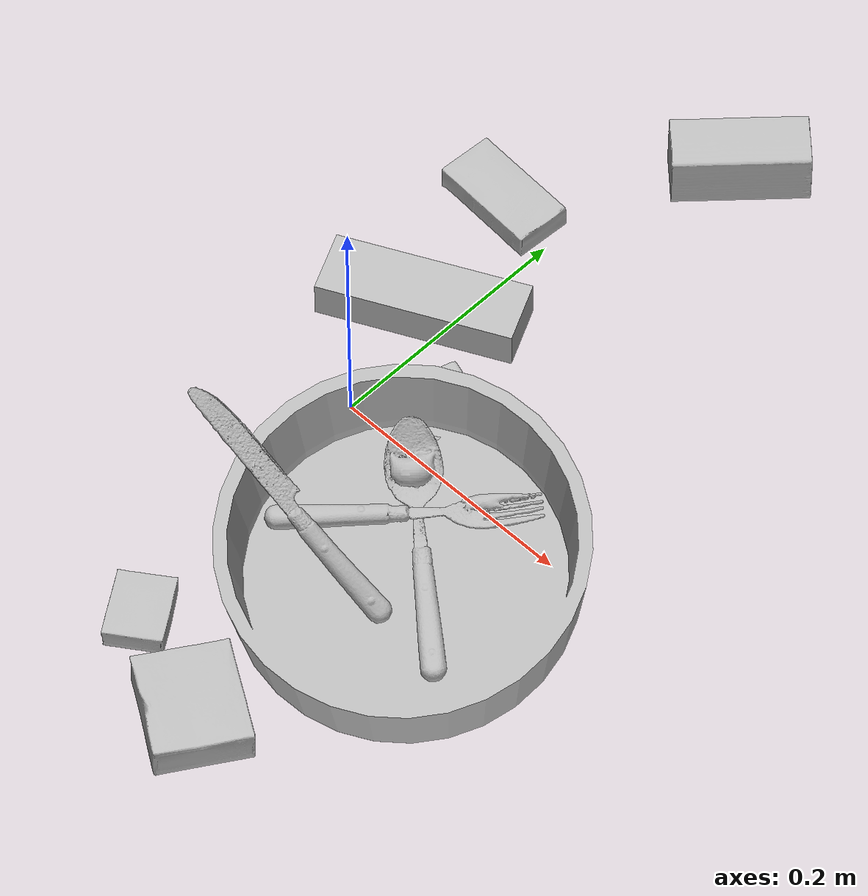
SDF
<sdf version="1.4">
  <world name="default">
    <light name="light1" type="point">
      <pose>0 0 1 0 0 0</pose>
      <diffuse>3 3 3 1</diffuse>
      <specular>3 3 3 1</specular>
    </light>
    <light name="light2" type="point">
      <pose>0 0.5 2 0 0 0</pose>
      <diffuse>1 1 1 1</diffuse>
      <specular>1 1 1 1</specular>
    </light>
    <light name="light3" type="point">
      <pose>0 0.5 2 0 0 0</pose>
      <diffuse>3 3 3 1</diffuse>
      <specular>3 3 3 1</specular>
    </light>
    <scene>
      <ambient>0.7 0.7 0.7</ambient>
    </scene>
    <model name="box11">
      <link name="link_box11">
        <collision name="default">
          <geometry>
            <mesh>
              <uri>model://jenga/collision_meshes/collision.obj</uri>
              <scale>1.0 1.0 1.0</scale>
            </mesh>
          </geometry>
          <surface>
            <friction>
              <ode>
                <mu>0.5</mu>
                <mu2>0.5</mu2>
              </ode>
            </friction>
          <contact>
        <ode>
            <max_vel>0</max_vel>
            <min_depth>0.0001</min_depth>
            <kp>1e8</kp>
        </ode>
    </contact></surface>
        </collision>
        <visual name="default">
          <geometry>
            <mesh>
              <uri>model://jenga/visual_meshes/visual.dae</uri>
              <scale>1.0 1.0 1.0</scale>
            </mesh>
          </geometry>
        </visual>
        <inertial>
          <mass>0.22063912451267242</mass>
          <pose>-2.502855807051674e-07 -0.00010250011109746993 -4.0923405322246253e-05 0.0 -7.34215461761844e-07 0.0</pose>
          <inertia>
            <ixx>6.1056206e-05</ixx>
            <iyy>0.00041371517</iyy>
            <izz>0.00044167612</izz>
            <ixy>0</ixy>
            <ixz>0</ixz>
            <iyz>0</iyz>
          </inertia>
        </inertial>
      </link>
      <pose>-0.022917410358786583 0.0978851392865181 0.014999997802078724 1.2567899351409981e-08 -2.013290709102537e-09 0.4564845364566908</pose>
    </model>
    <model name="box12">
      <link name="link_box12">
        <collision name="default">
          <geometry>
            <mesh>
              <uri>model://sugar_box/collision_meshes/collision.obj</uri>
              <scale>0.5 0.5 0.5</scale>
            </mesh>
          </geometry>
          <surface>
            <friction>
              <ode>
                <mu>0.5</mu>
                <mu2>0.5</mu2>
              </ode>
            </friction>
          <contact>
        <ode>
            <max_vel>0</max_vel>
            <min_depth>0.0001</min_depth>
            <kp>1e8</kp>
        </ode>
    </contact></surface>
        </collision>
        <visual name="default">
          <geometry>
            <mesh>
              <uri>model://sugar_box/visual_meshes/visual.dae</uri>
              <scale>0.5 0.5 0.5</scale>
            </mesh>
          </geometry>
        </visual>
        <inertial>
          <mass>0.053318966180086136</mass>
          <pose>0.0005171863595023751 1.924554817378521e-05 -0.00018182402709499002 -0.00040462627129080113 0.001050663522124822 0.0026153787889376494</pose>
          <inertia>
            <ixx>1.1106302e-05</ixx>
            <iyy>3.5897858e-05</iyy>
            <izz>4.2974014e-05</izz>
            <ixy>0</ixy>
            <ixz>0</ixz>
            <iyz>0</iyz>
          </inertia>
        </inertial>
      </link>
      <pose>-0.04904530569911003 0.20780473947525024 0.011399304494261742 0.0007745693298364671 -0.023433038467680363 3.076790555917664</pose>
    </model>
    <model name="box13">
      <link name="link_box13">
        <collision name="default">
          <geometry>
            <mesh>
              <uri>model://gelatin_box/collision_meshes/collision.obj</uri>
              <scale>1.0 1.0 1.0</scale>
            </mesh>
          </geometry>
          <surface>
            <friction>
              <ode>
                <mu>0.5</mu>
                <mu2>0.5</mu2>
              </ode>
            </friction>
          <contact>
        <ode>
            <max_vel>0</max_vel>
            <min_depth>0.0001</min_depth>
            <kp>1e8</kp>
        </ode>
    </contact></surface>
        </collision>
        <visual name="default">
          <geometry>
            <mesh>
              <uri>model://gelatin_box/visual_meshes/visual.dae</uri>
              <scale>1.0 1.0 1.0</scale>
            </mesh>
          </geometry>
        </visual>
        <inertial>
          <mass>0.19111748039722443</mass>
          <pose>0.0004319618456065655 0.00011156871914863586 -0.00036403207923285663 -0.0010503719765995955 -0.004755818690324038 0.01644055947160125</pose>
          <inertia>
            <ixx>0.00013491335</ixx>
            <iyy>9.63679e-05</iyy>
            <izz>0.00020536821</izz>
            <ixy>0</ixy>
            <ixz>0</ixz>
            <iyz>0</iyz>
          </inertia>
        </inertial>
      </link>
      <pose>0.11192643642425537 -0.26801878213882446 0.01516831386834383 0.0055974605218641815 -0.007304554200520274 -2.153925517387216</pose>
    </model>
    <model name="box21">
      <link name="link_box21">
        <collision name="default">
          <geometry>
            <mesh>
              <uri>model://pudding_box/collision_meshes/collision.obj</uri>
              <scale>0.5 0.5 0.5</scale>
            </mesh>
          </geometry>
          <surface>
            <friction>
              <ode>
                <mu>0.5</mu>
                <mu2>0.5</mu2>
              </ode>
            </friction>
          <contact>
        <ode>
            <max_vel>0</max_vel>
            <min_depth>0.0001</min_depth>
            <kp>1e8</kp>
        </ode>
    </contact></surface>
        </collision>
        <visual name="default">
          <geometry>
            <mesh>
              <uri>model://pudding_box/visual_meshes/visual.dae</uri>
              <scale>0.5 0.5 0.5</scale>
            </mesh>
          </geometry>
        </visual>
        <inertial>
          <mass>0.037507444620132446</mass>
          <pose>0.00024474109522998333 0.0004033942532259971 -0.0002594413817860186 0.00521310221980129 -0.006603800139852783 0.020079832606434308</pose>
          <inertia>
            <ixx>1.0600058e-05</ixx>
            <iyy>7.131795e-06</iyy>
            <izz>1.5653754e-05</izz>
            <ixy>0</ixy>
            <ixz>0</ixz>
            <iyz>0</iyz>
          </inertia>
        </inertial>
      </link>
      <pose>0.02597580850124359 -0.23556338250637054 0.009862905368208885 0.0223484604892268 -0.011391804678473167 0.5820448368193566</pose>
    </model>
    <model name="box22">
      <link name="link_box22">
        <collision name="default">
          <geometry>
            <mesh>
              <uri>model://rubiks_cube/collision_meshes/collision.obj</uri>
              <scale>1.0 1.0 1.0</scale>
            </mesh>
          </geometry>
          <surface>
            <friction>
              <ode>
                <mu>0.5</mu>
                <mu2>0.5</mu2>
              </ode>
            </friction>
          <contact>
        <ode>
            <max_vel>0</max_vel>
            <min_depth>0.0001</min_depth>
            <kp>1e8</kp>
        </ode>
    </contact></surface>
        </collision>
        <visual name="default">
          <geometry>
            <mesh>
              <uri>model://rubiks_cube/visual_meshes/visual.dae</uri>
              <scale>1.0 1.0 1.0</scale>
            </mesh>
          </geometry>
        </visual>
        <inertial>
          <mass>0.19412381947040558</mass>
          <pose>2.6721041649580002e-05 5.2569666877388954e-05 -7.264316082000732e-06 -0.05467327462967597 -0.09814157667114887 -0.034454893398498845</pose>
          <inertia>
            <ixx>0.000107266445</ixx>
            <iyy>0.0001067662</iyy>
            <izz>0.00010815532</izz>
            <ixy>0</ixy>
            <ixz>0</ixz>
            <iyz>0</iyz>
          </inertia>
        </inertial>
      </link>
      <pose>0.07218103110790253 0.016552887856960297 0.028673825785517693 -0.00018279828295426597 -0.0003047373891377255 1.2506369926756236</pose>
    </model>
    <model name="box23">
      <link name="link_box23">
        <collision name="default">
          <geometry>
            <mesh>
              <uri>model://wood_block/collision_meshes/collision.obj</uri>
              <scale>0.5 0.5 0.5</scale>
            </mesh>
          </geometry>
          <surface>
            <friction>
              <ode>
                <mu>0.5</mu>
                <mu2>0.5</mu2>
              </ode>
            </friction>
          <contact>
        <ode>
            <max_vel>0</max_vel>
            <min_depth>0.0001</min_depth>
            <kp>1e8</kp>
        </ode>
    </contact></surface>
        </collision>
        <visual name="default">
          <geometry>
            <mesh>
              <uri>model://wood_block/visual_meshes/visual.dae</uri>
              <scale>0.5 0.5 0.5</scale>
            </mesh>
          </geometry>
        </visual>
        <inertial>
          <mass>0.12021861970424652</mass>
          <pose>-2.9066577553749084e-06 -0.000285404734313488 0.00013204291462898254 -0.05220783851692058 -0.005192695246339916 -0.006861377900732038</pose>
          <inertia>
            <ixx>4.0217674e-05</ixx>
            <iyy>0.00012704768</iyy>
            <izz>0.00012657243</izz>
            <ixy>0</ixy>
            <ixz>0</ixz>
            <iyz>0</iyz>
          </inertia>
        </inertial>
      </link>
      <pose>0.05615974962711334 0.34766340255737305 0.022629257291555405 -0.005208457524173023 0.0057187371282998905 0.8128922820817509</pose>
    </model>
    <model name="plate1">
      <link name="link_plate1">
        <collision name="default">
          <geometry>
            <mesh>
              <uri>model://pan_tefal/collision_meshes/collision.obj</uri>
              <scale>1.0 1.0 1.0</scale>
            </mesh>
          </geometry>
          <surface>
            <friction>
              <ode>
                <mu>0.5</mu>
                <mu2>0.5</mu2>
              </ode>
            </friction>
          <contact>
        <ode>
            <max_vel>0</max_vel>
            <min_depth>0.0001</min_depth>
            <kp>1e8</kp>
        </ode>
    </contact></surface>
        </collision>
        <visual name="default">
          <geometry>
            <mesh>
              <uri>model://pan_tefal/visual_meshes/visual.dae</uri>
              <scale>1.0 1.0 1.0</scale>
            </mesh>
          </geometry>
        </visual>
        <inertial>
          <mass>1.1174349784851074</mass>
          <pose>-0.0001800186582840979 3.278696021880023e-05 -0.00851493701338768 0.0008190242272949328 -0.00033013996347192336 -0.33186114310704434</pose>
          <inertia>
            <ixx>0.0077136005</ixx>
            <iyy>0.0077633304</iyy>
            <izz>0.014199255</izz>
            <ixy>0</ixy>
            <ixz>0</ixz>
            <iyz>0</iyz>
          </inertia>
        </inertial>
      </link>
      <pose>0.1532287895679474 -0.09970023483037949 0.06252919137477875 0.06647586326424149 -0.23161481943825782 1.9509260170438751</pose>
    </model>
    <model name="silverware1">
      <link name="link_silverware1">
        <collision name="default">
          <geometry>
            <mesh>
              <uri>model://spoon/collision_meshes/collision.obj</uri>
              <scale>1.0 1.0 1.0</scale>
            </mesh>
          </geometry>
          <surface>
            <friction>
              <ode>
                <mu>0.5</mu>
                <mu2>0.5</mu2>
              </ode>
            </friction>
          <contact>
        <ode>
            <max_vel>0</max_vel>
            <min_depth>0.0001</min_depth>
            <kp>1e8</kp>
        </ode>
    </contact></surface>
        </collision>
        <visual name="default">
          <geometry>
            <mesh>
              <uri>model://spoon/visual_meshes/visual.dae</uri>
              <scale>1.0 1.0 1.0</scale>
            </mesh>
          </geometry>
        </visual>
        <inertial>
          <mass>0.03790392354130745</mass>
          <pose>-0.005526311695575714 -0.0016034170985221863 -0.0007271655485965312 0.03521845899657386 -0.039065840459698326 0.006150612465639116</pose>
          <inertia>
            <ixx>2.1082776e-06</ixx>
            <iyy>0.00014422317</iyy>
            <izz>0.00014526285</izz>
            <ixy>0</ixy>
            <ixz>0</ixz>
            <iyz>0</iyz>
          </inertia>
        </inertial>
      </link>
      <pose>0.1462227702140808 -0.07825111597776413 0.04514320567250252 -0.04557094682741249 -0.20817134048016514 2.440148340861464</pose>
    </model>
    <model name="silverware2">
      <link name="link_silverware2">
        <collision name="default">
          <geometry>
            <mesh>
              <uri>model://fork/collision_meshes/collision.obj</uri>
              <scale>1.0 1.0 1.0</scale>
            </mesh>
          </geometry>
          <surface>
            <friction>
              <ode>
                <mu>0.5</mu>
                <mu2>0.5</mu2>
              </ode>
            </friction>
          <contact>
        <ode>
            <max_vel>0</max_vel>
            <min_depth>0.0001</min_depth>
            <kp>1e8</kp>
        </ode>
    </contact></surface>
        </collision>
        <visual name="default">
          <geometry>
            <mesh>
              <uri>model://fork/visual_meshes/visual.dae</uri>
              <scale>1.0 1.0 1.0</scale>
            </mesh>
          </geometry>
        </visual>
        <inertial>
          <mass>0.029004188254475594</mass>
          <pose>-0.02957005612552166 0.0004658824182115495 0.00032188621116802096 -0.013551880215526314 -0.010977843078655252 0.014453906566097012</pose>
          <inertia>
            <ixx>1.0167608e-06</ixx>
            <iyy>7.572158e-05</iyy>
            <izz>7.617634e-05</izz>
            <ixy>0</ixy>
            <ixz>0</ixz>
            <iyz>0</iyz>
          </inertia>
        </inertial>
      </link>
      <pose>0.11929482221603394 -0.06538870185613632 0.04938206821680069 0.07314790737550725 -0.013627377730741507 0.7930348707735533</pose>
    </model>
    <model name="silverware3">
      <link name="link_silverware3">
        <collision name="default">
          <geometry>
            <mesh>
              <uri>model://knife/collision_meshes/collision.obj</uri>
              <scale>1.0 1.0 1.0</scale>
            </mesh>
          </geometry>
          <surface>
            <friction>
              <ode>
                <mu>0.5</mu>
                <mu2>0.5</mu2>
              </ode>
            </friction>
          <contact>
        <ode>
            <max_vel>0</max_vel>
            <min_depth>0.0001</min_depth>
            <kp>1e8</kp>
        </ode>
    </contact></surface>
        </collision>
        <visual name="default">
          <geometry>
            <mesh>
              <uri>model://knife/visual_meshes/visual.dae</uri>
              <scale>1.0 1.0 1.0</scale>
            </mesh>
          </geometry>
        </visual>
        <inertial>
          <mass>0.015800314024090767</mass>
          <pose>-0.023785250261425972 0.0015275126788765192 5.0620288675418124e-05 0.07305498599936577 0.01724841842216061 -0.0074098211805850795</pose>
          <inertia>
            <ixx>4.48477e-07</ixx>
            <iyy>6.0702252e-05</iyy>
            <izz>6.0846694e-05</izz>
            <ixy>0</ixy>
            <ixz>0</ixz>
            <iyz>0</iyz>
          </inertia>
        </inertial>
      </link>
      <pose>0.0767425000667572 -0.13436967134475708 0.09022145718336105 -0.4148057295196104 -0.6202447887796602 -3.0547677828227613</pose>
    </model>
  <physics type="ode">
      <max_contacts>50</max_contacts>
      <ode>
        <solver>
          <type>quick</type>
          <iters>75</iters>
        </solver>
        <constraints>
          <contact_max_correcting_vel>0</contact_max_correcting_vel>
          <contact_surface_layer>0</contact_surface_layer>
        </constraints>
      </ode>
    </physics></world>
</sdf>
